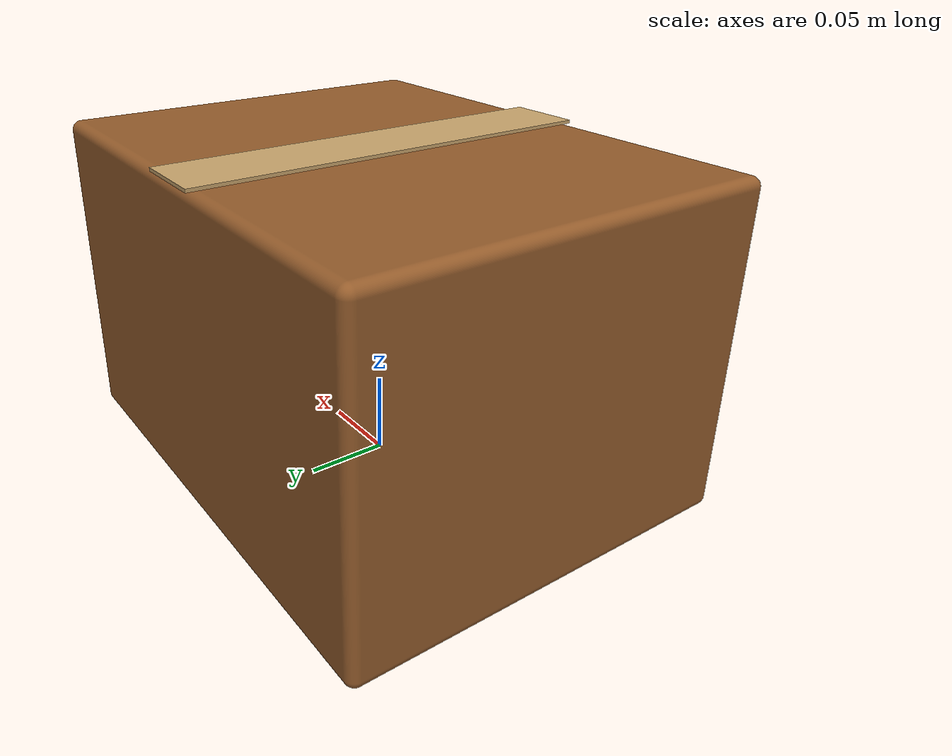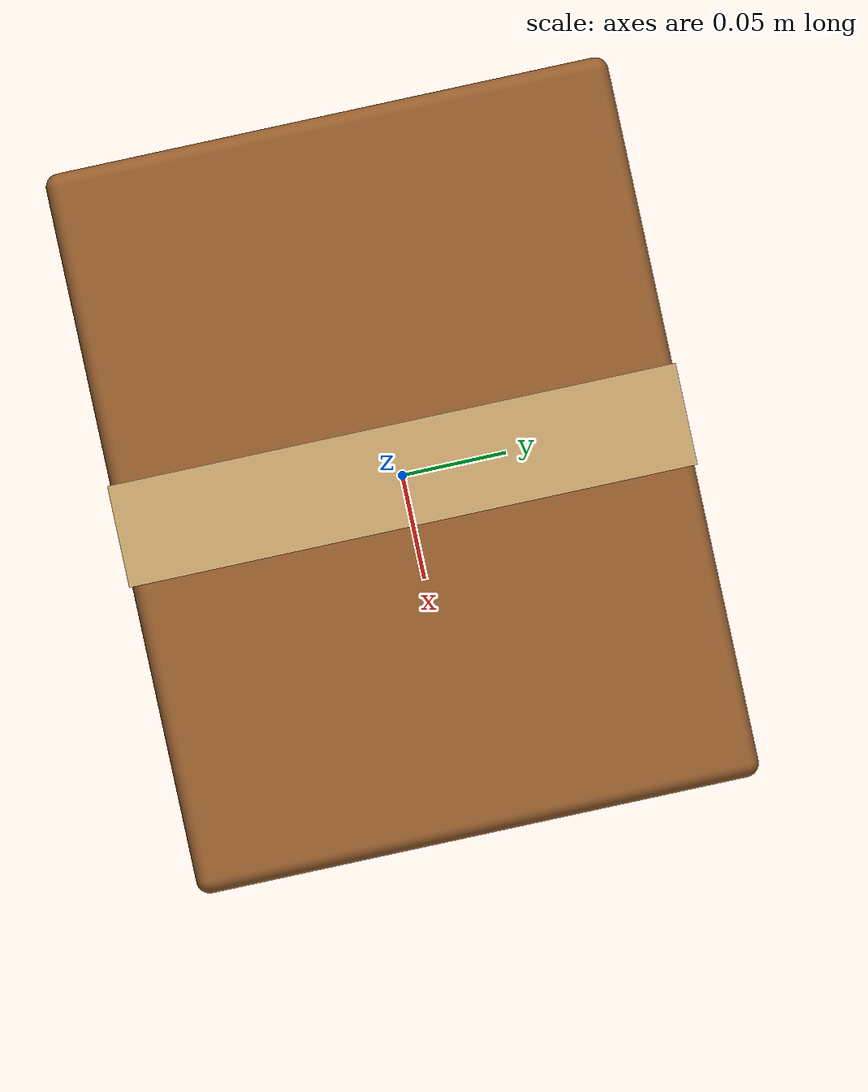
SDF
<?xml version="1.0"?><sdf version="1.6"><model name="small_box"><static>false</static><link name="link"><visual name="box"><geometry><mesh><uri>model://small_box/meshes/cardboard_box.stl</uri></mesh></geometry><material><ambient>0.58 0.36 0.17 1</ambient><diffuse>0.58 0.36 0.17 1</diffuse><specular>0.08 0.08 0.08 1</specular></material></visual><visual name="tape"><geometry><mesh><uri>model://small_box/meshes/packing_tape.stl</uri></mesh></geometry><material><ambient>0.78 0.64 0.42 1</ambient><diffuse>0.78 0.64 0.42 1</diffuse><specular>0.08 0.08 0.08 1</specular></material></visual><inertial><mass>0.4</mass><inertia><ixx>0.003417</ixx><iyy>0.004747</iyy><izz>0.005497</izz><ixy>0</ixy><ixz>0</ixz><iyz>0</iyz></inertia></inertial><collision name="box"><pose>0 0 0.10 0 0 0</pose><geometry><box><size>0.32 0.25 0.20</size></box></geometry></collision></link></model></sdf>
